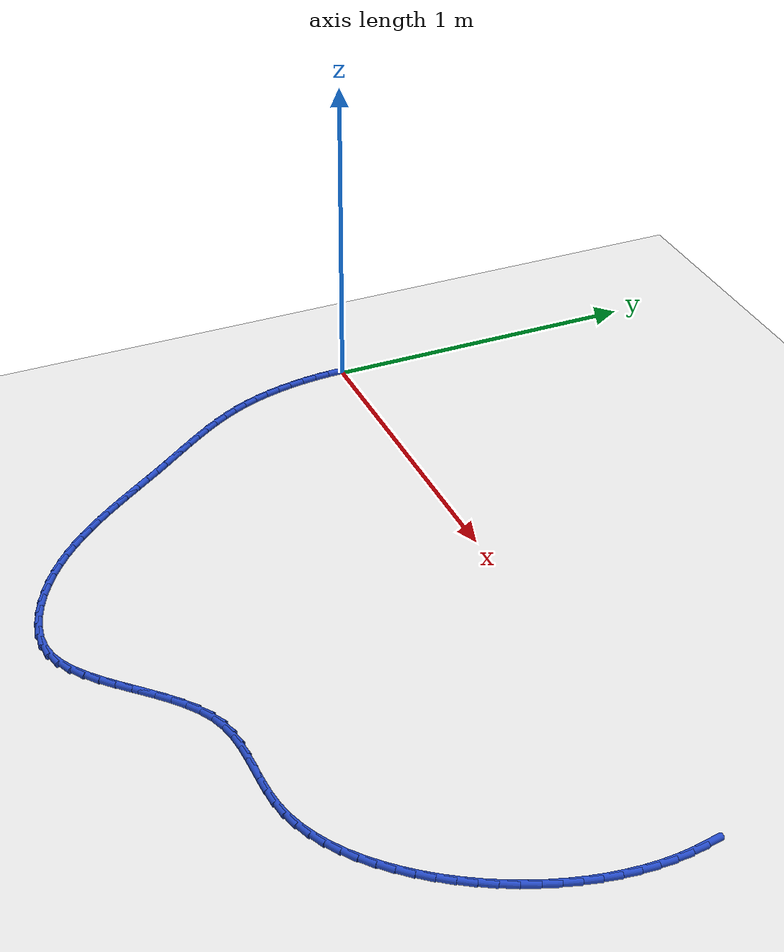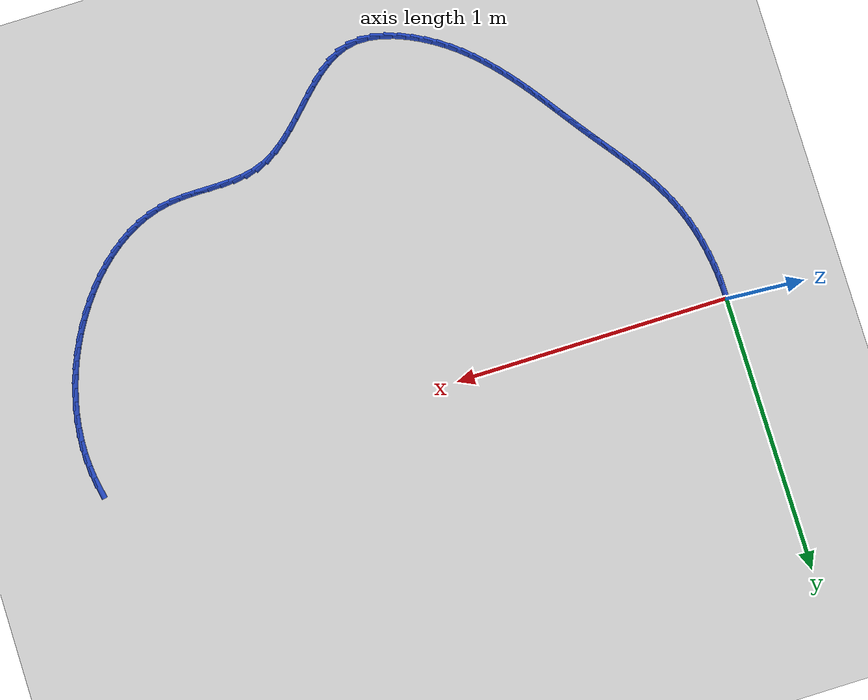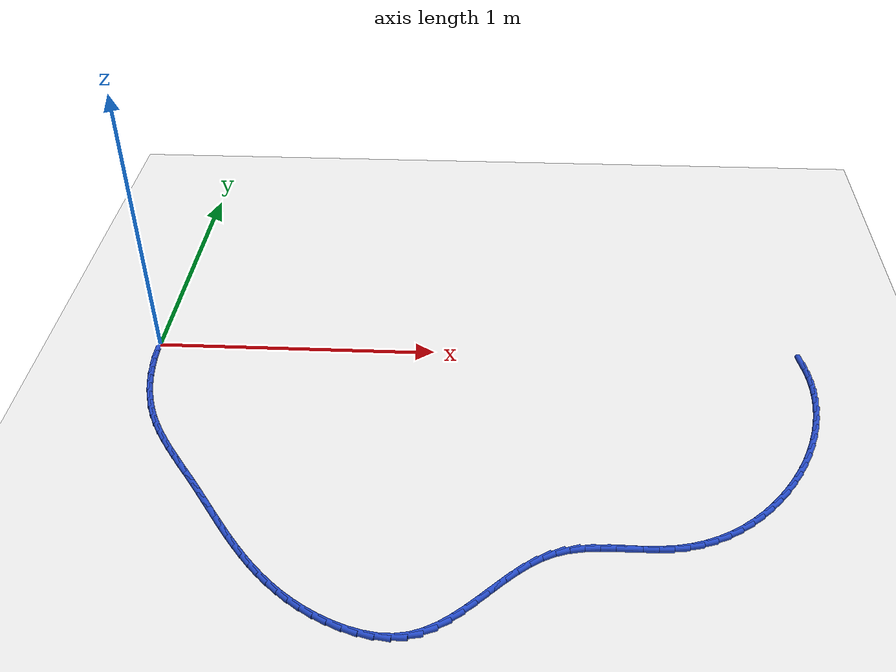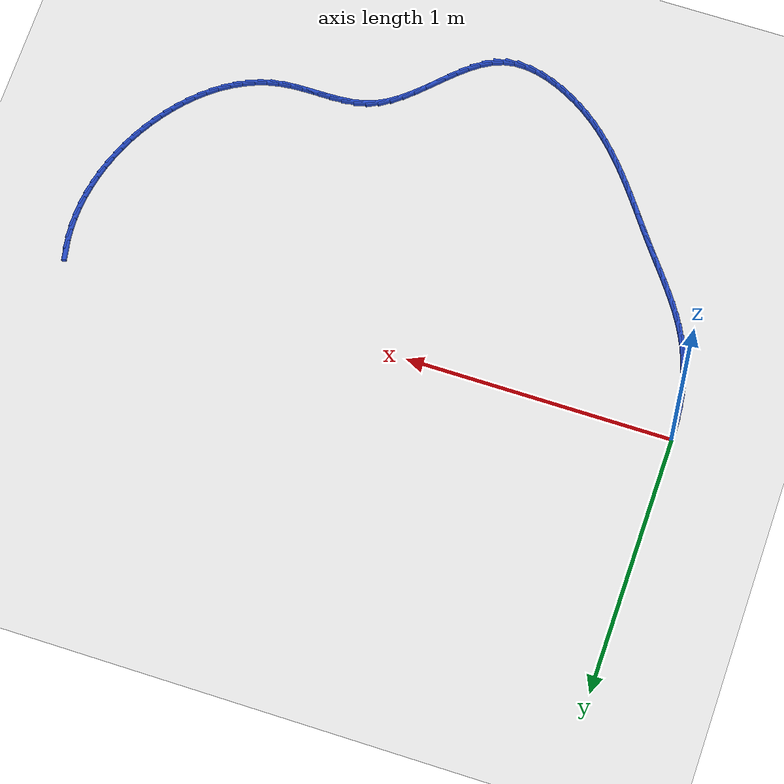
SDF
<sdf version="1.6">
 <world name="default">
  <model name="ground_plane">
   <static>1</static>
   <link name="link">
    <collision name="collision">
     <geometry><plane><normal>0 0 1</normal><size>100 100</size></plane></geometry>
     <surface><friction><ode><mu>100</mu><mu2>50</mu2></ode></friction></surface>
    </collision>
    <visual name="visual">
     <cast_shadows>0</cast_shadows>
     <geometry><plane><normal>0 0 1</normal><size>100 100</size></plane></geometry>
     <material>
      <script><uri>file://media/materials/scripts/gazebo.material</uri><name>Gazebo/WhiteGlow</name></script>
     </material>
    </visual>
   </link>
  </model>
  <model name="line">
   <link name="link_79">
    <pose>2.3153309946196994 -0.015575855914104424 0.01 0 1.57 -1.394334365909763</pose>
    <collision name="collision">
     <geometry><cylinder><radius>0.01</radius><length>0.08</length></cylinder></geometry>
    </collision>
    <visual name="visual">
     <material>
      <script><name>Gazebo/Blue</name><uri>file://media/materials/scripts/gazebo.material</uri></script>
     </material>
     <geometry><cylinder><radius>0.01</radius><length>0.08</length></cylinder></geometry>
    </visual>
   </link>
   <link name="link_80">
    <pose>2.323337787706472 -0.06047795626926299 0.01 0 1.57 -1.4661962134425361</pose>
    <collision name="collision">
     <geometry><cylinder><radius>0.01</radius><length>0.08</length></cylinder></geometry>
    </collision>
    <visual name="visual">
     <material>
      <script><name>Gazebo/Blue</name><uri>file://media/materials/scripts/gazebo.material</uri></script>
     </material>
     <geometry><cylinder><radius>0.01</radius><length>0.08</length></cylinder></geometry>
    </visual>
   </link>
   <link name="link_81">
    <pose>2.328136897364009 -0.10619104469259136 0.01 0 1.57 -1.5346631598240679</pose>
    <collision name="collision">
     <geometry><cylinder><radius>0.01</radius><length>0.08</length></cylinder></geometry>
    </collision>
    <visual name="visual">
     <material>
      <script><name>Gazebo/Blue</name><uri>file://media/materials/scripts/gazebo.material</uri></script>
     </material>
     <geometry><cylinder><radius>0.01</radius><length>0.08</length></cylinder></geometry>
    </visual>
   </link>
   <link name="link_82">
    <pose>2.329811877493473 -0.15252662089030877 0.01 0 1.57 1.5416062401000117</pose>
    <collision name="collision">
     <geometry><cylinder><radius>0.01</radius><length>0.08</length></cylinder></geometry>
    </collision>
    <visual name="visual">
     <material>
      <script><name>Gazebo/Blue</name><uri>file://media/materials/scripts/gazebo.material</uri></script>
     </material>
     <geometry><cylinder><radius>0.01</radius><length>0.08</length></cylinder></geometry>
    </visual>
   </link>
   <link name="link_83">
    <pose>2.328446281996025 -0.19929618456863232 0.01 0 1.57 1.479112948693568</pose>
    <collision name="collision">
     <geometry><cylinder><radius>0.01</radius><length>0.08</length></cylinder></geometry>
    </collision>
    <visual name="visual">
     <material>
      <script><name>Gazebo/Blue</name><uri>file://media/materials/scripts/gazebo.material</uri></script>
     </material>
     <geometry><cylinder><radius>0.01</radius><length>0.08</length></cylinder></geometry>
    </visual>
   </link>
   <link name="link_84">
    <pose>2.3241236647728276 -0.24631123543378103 0.01 0 1.57 1.4190969305252579</pose>
    <collision name="collision">
     <geometry><cylinder><radius>0.01</radius><length>0.08</length></cylinder></geometry>
    </collision>
    <visual name="visual">
     <material>
      <script><name>Gazebo/Blue</name><uri>file://media/materials/scripts/gazebo.material</uri></script>
     </material>
     <geometry><cylinder><radius>0.01</radius><length>0.08</length></cylinder></geometry>
    </visual>
   </link>
   <link name="link_85">
    <pose>2.316927579725044 -0.2933832731919736 0.01 0 1.57 1.3611839267809676</pose>
    <collision name="collision">
     <geometry><cylinder><radius>0.01</radius><length>0.08</length></cylinder></geometry>
    </collision>
    <visual name="visual">
     <material>
      <script><name>Gazebo/Blue</name><uri>file://media/materials/scripts/gazebo.material</uri></script>
     </material>
     <geometry><cylinder><radius>0.01</radius><length>0.08</length></cylinder></geometry>
    </visual>
   </link>
   <link name="link_86">
    <pose>2.3069415807538363 -0.3403237975494286 0.01 0 1.57 1.3049900606232636</pose>
    <collision name="collision">
     <geometry><cylinder><radius>0.01</radius><length>0.08</length></cylinder></geometry>
    </collision>
    <visual name="visual">
     <material>
      <script><name>Gazebo/Blue</name><uri>file://media/materials/scripts/gazebo.material</uri></script>
     </material>
     <geometry><cylinder><radius>0.01</radius><length>0.08</length></cylinder></geometry>
    </visual>
   </link>
   <link name="link_87">
    <pose>2.2942492217603645 -0.3869443082123653 0.01 0 1.57 1.2501294041197348</pose>
    <collision name="collision">
     <geometry><cylinder><radius>0.01</radius><length>0.08</length></cylinder></geometry>
    </collision>
    <visual name="visual">
     <material>
      <script><name>Gazebo/Blue</name><uri>file://media/materials/scripts/gazebo.material</uri></script>
     </material>
     <geometry><cylinder><radius>0.01</radius><length>0.08</length></cylinder></geometry>
    </visual>
   </link>
   <link name="link_88">
    <pose>2.2789340566457934 -0.4330563048870006 0.01 0 1.57 1.1962182457895125</pose>
    <collision name="collision">
     <geometry><cylinder><radius>0.01</radius><length>0.08</length></cylinder></geometry>
    </collision>
    <visual name="visual">
     <material>
      <script><name>Gazebo/Blue</name><uri>file://media/materials/scripts/gazebo.material</uri></script>
     </material>
     <geometry><cylinder><radius>0.01</radius><length>0.08</length></cylinder></geometry>
    </visual>
   </link>
   <link name="link_89">
    <pose>2.2610796393112844 -0.47847128727955374 0.01 0 1.57 1.142877042445908</pose>
    <collision name="collision">
     <geometry><cylinder><radius>0.01</radius><length>0.08</length></cylinder></geometry>
    </collision>
    <visual name="visual">
     <material>
      <script><name>Gazebo/Blue</name><uri>file://media/materials/scripts/gazebo.material</uri></script>
     </material>
     <geometry><cylinder><radius>0.01</radius><length>0.08</length></cylinder></geometry>
    </visual>
   </link>
   <link name="link_90">
    <pose>2.2407695236579985 -0.5230007550962433 0.01 0 1.57 1.0897308969278872</pose>
    <collision name="collision">
     <geometry><cylinder><radius>0.01</radius><length>0.08</length></cylinder></geometry>
    </collision>
    <visual name="visual">
     <material>
      <script><name>Gazebo/Blue</name><uri>file://media/materials/scripts/gazebo.material</uri></script>
     </material>
     <geometry><cylinder><radius>0.01</radius><length>0.08</length></cylinder></geometry>
    </visual>
   </link>
   <link name="link_91">
    <pose>2.2180872635871 -0.566456208043288 0.01 0 1.57 1.03640927419584</pose>
    <collision name="collision">
     <geometry><cylinder><radius>0.01</radius><length>0.08</length></cylinder></geometry>
    </collision>
    <visual name="visual">
     <material>
      <script><name>Gazebo/Blue</name><uri>file://media/materials/scripts/gazebo.material</uri></script>
     </material>
     <geometry><cylinder><radius>0.01</radius><length>0.08</length></cylinder></geometry>
    </visual>
   </link>
   <link name="link_92">
    <pose>2.193116412999748 -0.6086491458269065 0.01 0 1.57 0.9824971063889345</pose>
    <collision name="collision">
     <geometry><cylinder><radius>0.01</radius><length>0.08</length></cylinder></geometry>
    </collision>
    <visual name="visual">
     <material>
      <script><name>Gazebo/Blue</name><uri>file://media/materials/scripts/gazebo.material</uri></script>
     </material>
     <geometry><cylinder><radius>0.01</radius><length>0.08</length></cylinder></geometry>
    </visual>
   </link>
   <link name="link_93">
    <pose>2.1659404736150427 -0.6493868688183145 0.01 0 1.57 0.9267895767003484</pose>
    <collision name="collision">
     <geometry><cylinder><radius>0.01</radius><length>0.08</length></cylinder></geometry>
    </collision>
    <visual name="visual">
     <material>
      <script><name>Gazebo/Blue</name><uri>file://media/materials/scripts/gazebo.material</uri></script>
     </material>
     <geometry><cylinder><radius>0.01</radius><length>0.08</length></cylinder></geometry>
    </visual>
   </link>
   <link name="link_94">
    <pose>2.1366421212733226 -0.6884102150593363 0.01 0 1.57 0.8680067684217831</pose>
    <collision name="collision">
     <geometry><cylinder><radius>0.01</radius><length>0.08</length></cylinder></geometry>
    </collision>
    <visual name="visual">
     <material>
      <script><name>Gazebo/Blue</name><uri>file://media/materials/scripts/gazebo.material</uri></script>
     </material>
     <geometry><cylinder><radius>0.01</radius><length>0.08</length></cylinder></geometry>
    </visual>
   </link>
   <link name="link_95">
    <pose>2.1053033721766967 -0.7254069384161237 0.01 0 1.57 0.8053977715013263</pose>
    <collision name="collision">
     <geometry><cylinder><radius>0.01</radius><length>0.08</length></cylinder></geometry>
    </collision>
    <visual name="visual">
     <material>
      <script><name>Gazebo/Blue</name><uri>file://media/materials/scripts/gazebo.material</uri></script>
     </material>
     <geometry><cylinder><radius>0.01</radius><length>0.08</length></cylinder></geometry>
    </visual>
   </link>
   <link name="link_96">
    <pose>2.0720062241207042 -0.7600633114917603 0.01 0 1.57 0.7382249399401939</pose>
    <collision name="collision">
     <geometry><cylinder><radius>0.01</radius><length>0.08</length></cylinder></geometry>
    </collision>
    <visual name="visual">
     <material>
      <script><name>Gazebo/Blue</name><uri>file://media/materials/scripts/gazebo.material</uri></script>
     </material>
     <geometry><cylinder><radius>0.01</radius><length>0.08</length></cylinder></geometry>
    </visual>
   </link>
   <link name="link_97">
    <pose>2.036832674900885 -0.7920656068893287 0.01 0 1.57 0.6657725497142223</pose>
    <collision name="collision">
     <geometry><cylinder><radius>0.01</radius><length>0.08</length></cylinder></geometry>
    </collision>
    <visual name="visual">
     <material>
      <script><name>Gazebo/Blue</name><uri>file://media/materials/scripts/gazebo.material</uri></script>
     </material>
     <geometry><cylinder><radius>0.01</radius><length>0.08</length></cylinder></geometry>
    </visual>
   </link>
   <link name="link_98">
    <pose>1.9998647223127755 -0.8211000972119121 0.01 0 1.57 0.5873947576112122</pose>
    <collision name="collision">
     <geometry><cylinder><radius>0.01</radius><length>0.08</length></cylinder></geometry>
    </collision>
    <visual name="visual">
     <material>
      <script><name>Gazebo/Blue</name><uri>file://media/materials/scripts/gazebo.material</uri></script>
     </material>
     <geometry><cylinder><radius>0.01</radius><length>0.08</length></cylinder></geometry>
    </visual>
   </link>
   <link name="link_99">
    <pose>1.961184364151915 -0.8468530550625941 0.01 0 1.57 0.5025913268602459</pose>
    <collision name="collision">
     <geometry><cylinder><radius>0.01</radius><length>0.08</length></cylinder></geometry>
    </collision>
    <visual name="visual">
     <material>
      <script><name>Gazebo/Blue</name><uri>file://media/materials/scripts/gazebo.material</uri></script>
     </material>
     <geometry><cylinder><radius>0.01</radius><length>0.08</length></cylinder></geometry>
    </visual>
   </link>
   <link name="link_100">
    <pose>1.9208735982138425 -0.8690107530444581 0.01 0 1.57 0.4111127923886655</pose>
    <collision name="collision">
     <geometry><cylinder><radius>0.01</radius><length>0.08</length></cylinder></geometry>
    </collision>
    <visual name="visual">
     <material>
      <script><name>Gazebo/Blue</name><uri>file://media/materials/scripts/gazebo.material</uri></script>
     </material>
     <geometry><cylinder><radius>0.01</radius><length>0.08</length></cylinder></geometry>
    </visual>
   </link>
   <link name="link_101">
    <pose>1.8790144222940943 -0.8872594637605872 0.01 0 1.57 0.3130870487203906</pose>
    <collision name="collision">
     <geometry><cylinder><radius>0.01</radius><length>0.08</length></cylinder></geometry>
    </collision>
    <visual name="visual">
     <material>
      <script><name>Gazebo/Blue</name><uri>file://media/materials/scripts/gazebo.material</uri></script>
     </material>
     <geometry><cylinder><radius>0.01</radius><length>0.08</length></cylinder></geometry>
    </visual>
   </link>
   <link name="link_102">
    <pose>1.8356888341882114 -0.9012854598140642 0.01 0 1.57 0.20915160846940364</pose>
    <collision name="collision">
     <geometry><cylinder><radius>0.01</radius><length>0.08</length></cylinder></geometry>
    </collision>
    <visual name="visual">
     <material>
      <script><name>Gazebo/Blue</name><uri>file://media/materials/scripts/gazebo.material</uri></script>
     </material>
     <geometry><cylinder><radius>0.01</radius><length>0.08</length></cylinder></geometry>
    </visual>
   </link>
   <link name="link_103">
    <pose>1.7909789120356556 -0.9107753943328168 0.01 0 1.57 0.10955299941121056</pose>
    <collision name="collision">
     <geometry><cylinder><radius>0.01</radius><length>0.08</length></cylinder></geometry>
    </collision>
    <visual name="visual">
     <material>
      <script><name>Gazebo/Blue</name><uri>file://media/materials/scripts/gazebo.material</uri></script>
     </material>
     <geometry><cylinder><radius>0.01</radius><length>0.08</length></cylinder></geometry>
    </visual>
   </link>
   <link name="link_104">
    <pose>1.74505350508198 -0.9158268856989105 0.01 0 1.57 0.040733349715306885</pose>
    <collision name="collision">
     <geometry><cylinder><radius>0.01</radius><length>0.08</length></cylinder></geometry>
    </collision>
    <visual name="visual">
     <material>
      <script><name>Gazebo/Blue</name><uri>file://media/materials/scripts/gazebo.material</uri></script>
     </material>
     <geometry><cylinder><radius>0.01</radius><length>0.08</length></cylinder></geometry>
    </visual>
   </link>
   <link name="link_105">
    <pose>1.6983334475482144 -0.9177310033653379 0.01 0 1.57 0.005594958672195666</pose>
    <collision name="collision">
     <geometry><cylinder><radius>0.01</radius><length>0.08</length></cylinder></geometry>
    </collision>
    <visual name="visual">
     <material>
      <script><name>Gazebo/Blue</name><uri>file://media/materials/scripts/gazebo.material</uri></script>
     </material>
     <geometry><cylinder><radius>0.01</radius><length>0.08</length></cylinder></geometry>
    </visual>
   </link>
   <link name="link_106">
    <pose>1.6512850580421445 -0.9179942399069706 0.01 0 1.57 0.00274667578630848</pose>
    <collision name="collision">
     <geometry><cylinder><radius>0.01</radius><length>0.08</length></cylinder></geometry>
    </collision>
    <visual name="visual">
     <material>
      <script><name>Gazebo/Blue</name><uri>file://media/materials/scripts/gazebo.material</uri></script>
     </material>
     <geometry><cylinder><radius>0.01</radius><length>0.08</length></cylinder></geometry>
    </visual>
   </link>
   <link name="link_107">
    <pose>1.6043746551715592 -0.9181230878986809 0.01 0 1.57 0.0324023566491863</pose>
    <collision name="collision">
     <geometry><cylinder><radius>0.01</radius><length>0.08</length></cylinder></geometry>
    </collision>
    <visual name="visual">
     <material>
      <script><name>Gazebo/Blue</name><uri>file://media/materials/scripts/gazebo.material</uri></script>
     </material>
     <geometry><cylinder><radius>0.01</radius><length>0.08</length></cylinder></geometry>
    </visual>
   </link>
   <link name="link_108">
    <pose>1.5580685575442432 -0.9196240399153405 0.01 0 1.57 0.09651587223530028</pose>
    <collision name="collision">
     <geometry><cylinder><radius>0.01</radius><length>0.08</length></cylinder></geometry>
    </collision>
    <visual name="visual">
     <material>
      <script><name>Gazebo/Blue</name><uri>file://media/materials/scripts/gazebo.material</uri></script>
     </material>
     <geometry><cylinder><radius>0.01</radius><length>0.08</length></cylinder></geometry>
    </visual>
   </link>
   <link name="link_109">
    <pose>1.512833083767984 -0.924003588531822 0.01 0 1.57 0.19794409065192045</pose>
    <collision name="collision">
     <geometry><cylinder><radius>0.01</radius><length>0.08</length></cylinder></geometry>
    </collision>
    <visual name="visual">
     <material>
      <script><name>Gazebo/Blue</name><uri>file://media/materials/scripts/gazebo.material</uri></script>
     </material>
     <geometry><cylinder><radius>0.01</radius><length>0.08</length></cylinder></geometry>
    </visual>
   </link>
   <link name="link_110">
    <pose>1.4691345524505675 -0.9327682263229967 0.01 0 1.57 0.33789011468176916</pose>
    <collision name="collision">
     <geometry><cylinder><radius>0.01</radius><length>0.08</length></cylinder></geometry>
    </collision>
    <visual name="visual">
     <material>
      <script><name>Gazebo/Blue</name><uri>file://media/materials/scripts/gazebo.material</uri></script>
     </material>
     <geometry><cylinder><radius>0.01</radius><length>0.08</length></cylinder></geometry>
    </visual>
   </link>
   <link name="link_111">
    <pose>1.4274376071111385 -0.9474190631038539 0.01 0 1.57 0.4924434628749308</pose>
    <collision name="collision">
     <geometry><cylinder><radius>0.01</radius><length>0.08</length></cylinder></geometry>
    </collision>
    <visual name="visual">
     <material>
      <script><name>Gazebo/Blue</name><uri>file://media/materials/scripts/gazebo.material</uri></script>
     </material>
     <geometry><cylinder><radius>0.01</radius><length>0.08</length></cylinder></geometry>
    </visual>
   </link>
   <link name="link_112">
    <pose>1.387942979684898 -0.9686091504721337 0.01 0 1.57 0.6154987719939531</pose>
    <collision name="collision">
     <geometry><cylinder><radius>0.01</radius><length>0.08</length></cylinder></geometry>
    </collision>
    <visual name="visual">
     <material>
      <script><name>Gazebo/Blue</name><uri>file://media/materials/scripts/gazebo.material</uri></script>
     </material>
     <geometry><cylinder><radius>0.01</radius><length>0.08</length></cylinder></geometry>
    </visual>
   </link>
   <link name="link_113">
    <pose>1.3503020860528079 -0.9952263579646173 0.01 0 1.57 0.703502328011055</pose>
    <collision name="collision">
     <geometry><cylinder><radius>0.01</radius><length>0.08</length></cylinder></geometry>
    </collision>
    <visual name="visual">
     <material>
      <script><name>Gazebo/Blue</name><uri>file://media/materials/scripts/gazebo.material</uri></script>
     </material>
     <geometry><cylinder><radius>0.01</radius><length>0.08</length></cylinder></geometry>
    </visual>
   </link>
   <link name="link_114">
    <pose>1.3140977768383182 -1.025938226289839 0.01 0 1.57 0.7604858901946682</pose>
    <collision name="collision">
     <geometry><cylinder><radius>0.01</radius><length>0.08</length></cylinder></geometry>
    </collision>
    <visual name="visual">
     <material>
      <script><name>Gazebo/Blue</name><uri>file://media/materials/scripts/gazebo.material</uri></script>
     </material>
     <geometry><cylinder><radius>0.01</radius><length>0.08</length></cylinder></geometry>
    </visual>
   </link>
   <link name="link_115">
    <pose>1.2789129026648791 -1.0594122961563337 0.01 0 1.57 0.7900209574443715</pose>
    <collision name="collision">
     <geometry><cylinder><radius>0.01</radius><length>0.08</length></cylinder></geometry>
    </collision>
    <visual name="visual">
     <material>
      <script><name>Gazebo/Blue</name><uri>file://media/materials/scripts/gazebo.material</uri></script>
     </material>
     <geometry><cylinder><radius>0.01</radius><length>0.08</length></cylinder></geometry>
    </visual>
   </link>
   <link name="link_116">
    <pose>1.2443303141559399 -1.0943161082726356 0.01 0 1.57 0.7940961499438406</pose>
    <collision name="collision">
     <geometry><cylinder><radius>0.01</radius><length>0.08</length></cylinder></geometry>
    </collision>
    <visual name="visual">
     <material>
      <script><name>Gazebo/Blue</name><uri>file://media/materials/scripts/gazebo.material</uri></script>
     </material>
     <geometry><cylinder><radius>0.01</radius><length>0.08</length></cylinder></geometry>
    </visual>
   </link>
   <link name="link_117">
    <pose>1.2099328619349516 -1.1293172033472778 0.01 0 1.57 0.7727730323567963</pose>
    <collision name="collision">
     <geometry><cylinder><radius>0.01</radius><length>0.08</length></cylinder></geometry>
    </collision>
    <visual name="visual">
     <material>
      <script><name>Gazebo/Blue</name><uri>file://media/materials/scripts/gazebo.material</uri></script>
     </material>
     <geometry><cylinder><radius>0.01</radius><length>0.08</length></cylinder></geometry>
    </visual>
   </link>
   <link name="link_118">
    <pose>1.1753033966253643 -1.1630831220887952 0.01 0 1.57 0.724095194638197</pose>
    <collision name="collision">
     <geometry><cylinder><radius>0.01</radius><length>0.08</length></cylinder></geometry>
    </collision>
    <visual name="visual">
     <material>
      <script><name>Gazebo/Blue</name><uri>file://media/materials/scripts/gazebo.material</uri></script>
     </material>
     <geometry><cylinder><radius>0.01</radius><length>0.08</length></cylinder></geometry>
    </visual>
   </link>
   <link name="link_119">
    <pose>1.1400247688506269 -1.1942814052057216 0.01 0 1.57 0.6441960132005059</pose>
    <collision name="collision">
     <geometry><cylinder><radius>0.01</radius><length>0.08</length></cylinder></geometry>
    </collision>
    <visual name="visual">
     <material>
      <script><name>Gazebo/Blue</name><uri>file://media/materials/scripts/gazebo.material</uri></script>
     </material>
     <geometry><cylinder><radius>0.01</radius><length>0.08</length></cylinder></geometry>
    </visual>
   </link>
   <link name="link_120">
    <pose>1.1036798292341905 -1.2215795934065914 0.01 0 1.57 0.5280560429068475</pose>
    <collision name="collision">
     <geometry><cylinder><radius>0.01</radius><length>0.08</length></cylinder></geometry>
    </collision>
    <visual name="visual">
     <material>
      <script><name>Gazebo/Blue</name><uri>file://media/materials/scripts/gazebo.material</uri></script>
     </material>
     <geometry><cylinder><radius>0.01</radius><length>0.08</length></cylinder></geometry>
    </visual>
   </link>
   <link name="link_121">
    <pose>1.0658514283995033 -1.2436452273999392 0.01 0 1.57 0.3719938376863075</pose>
    <collision name="collision">
     <geometry><cylinder><radius>0.01</radius><length>0.08</length></cylinder></geometry>
    </collision>
    <visual name="visual">
     <material>
      <script><name>Gazebo/Blue</name><uri>file://media/materials/scripts/gazebo.material</uri></script>
     </material>
     <geometry><cylinder><radius>0.01</radius><length>0.08</length></cylinder></geometry>
    </visual>
   </link>
   <link name="link_122">
    <pose>1.0261224169700178 -1.259145847894299 0.01 0 1.57 0.17968748972214715</pose>
    <collision name="collision">
     <geometry><cylinder><radius>0.01</radius><length>0.08</length></cylinder></geometry>
    </collision>
    <visual name="visual">
     <material>
      <script><name>Gazebo/Blue</name><uri>file://media/materials/scripts/gazebo.material</uri></script>
     </material>
     <geometry><cylinder><radius>0.01</radius><length>0.08</length></cylinder></geometry>
    </visual>
   </link>
   <link name="link_123">
    <pose>0.9840926769484483 -1.266780411008174 0.01 0 1.57 -0.010245193181587554</pose>
    <collision name="collision">
     <geometry><cylinder><radius>0.01</radius><length>0.08</length></cylinder></geometry>
    </collision>
    <visual name="visual">
     <material>
      <script><name>Gazebo/Blue</name><uri>file://media/materials/scripts/gazebo.material</uri></script>
     </material>
     <geometry><cylinder><radius>0.01</radius><length>0.08</length></cylinder></geometry>
    </visual>
   </link>
   <link name="link_124">
    <pose>0.9399477305492332 -1.266328121679516 0.01 0 1.57 -0.16244372925285985</pose>
    <collision name="collision">
     <geometry><cylinder><radius>0.01</radius><length>0.08</length></cylinder></geometry>
    </collision>
    <visual name="visual">
     <material>
      <script><name>Gazebo/Blue</name><uri>file://media/materials/scripts/gazebo.material</uri></script>
     </material>
     <geometry><cylinder><radius>0.01</radius><length>0.08</length></cylinder></geometry>
    </visual>
   </link>
   <link name="link_125">
    <pose>0.8945923749212104 -1.2588949310006443 0.01 0 1.57 -0.2822146402139752</pose>
    <collision name="collision">
     <geometry><cylinder><radius>0.01</radius><length>0.08</length></cylinder></geometry>
    </collision>
    <visual name="visual">
     <material>
      <script><name>Gazebo/Blue</name><uri>file://media/materials/scripts/gazebo.material</uri></script>
     </material>
     <geometry><cylinder><radius>0.01</radius><length>0.08</length></cylinder></geometry>
    </visual>
   </link>
   <link name="link_126">
    <pose>0.8489755199837148 -1.2456681587392164 0.01 0 1.57 -0.37784144735803976</pose>
    <collision name="collision">
     <geometry><cylinder><radius>0.01</radius><length>0.08</length></cylinder></geometry>
    </collision>
    <visual name="visual">
     <material>
      <script><name>Gazebo/Blue</name><uri>file://media/materials/scripts/gazebo.material</uri></script>
     </material>
     <geometry><cylinder><radius>0.01</radius><length>0.08</length></cylinder></geometry>
    </visual>
   </link>
   <link name="link_127">
    <pose>0.804046075656084 -1.2278351246628918 0.01 0 1.57 -0.45633325926498103</pose>
    <collision name="collision">
     <geometry><cylinder><radius>0.01</radius><length>0.08</length></cylinder></geometry>
    </collision>
    <visual name="visual">
     <material>
      <script><name>Gazebo/Blue</name><uri>file://media/materials/scripts/gazebo.material</uri></script>
     </material>
     <geometry><cylinder><radius>0.01</radius><length>0.08</length></cylinder></geometry>
    </visual>
   </link>
   <link name="link_128">
    <pose>0.7607524464846939 -1.206582705668294 0.01 0 1.57 -0.5247841771985446</pose>
    <collision name="collision">
     <geometry><cylinder><radius>0.01</radius><length>0.08</length></cylinder></geometry>
    </collision>
    <visual name="visual">
     <material>
      <script><name>Gazebo/Blue</name><uri>file://media/materials/scripts/gazebo.material</uri></script>
     </material>
     <geometry><cylinder><radius>0.01</radius><length>0.08</length></cylinder></geometry>
    </visual>
   </link>
   <link name="link_129">
    <pose>0.7197637830064931 -1.182853061340637 0.01 0 1.57 -0.5893820339817992</pose>
    <collision name="collision">
     <geometry><cylinder><radius>0.01</radius><length>0.08</length></cylinder></geometry>
    </collision>
    <visual name="visual">
     <material>
      <script><name>Gazebo/Blue</name><uri>file://media/materials/scripts/gazebo.material</uri></script>
     </material>
     <geometry><cylinder><radius>0.01</radius><length>0.08</length></cylinder></geometry>
    </visual>
   </link>
   <link name="link_130">
    <pose>0.6810070008034068 -1.1569379121076098 0.01 0 1.57 -0.6500197623348749</pose>
    <collision name="collision">
     <geometry><cylinder><radius>0.01</radius><length>0.08</length></cylinder></geometry>
    </collision>
    <visual name="visual">
     <material>
      <script><name>Gazebo/Blue</name><uri>file://media/materials/scripts/gazebo.material</uri></script>
     </material>
     <geometry><cylinder><radius>0.01</radius><length>0.08</length></cylinder></geometry>
    </visual>
   </link>
   <link name="link_131">
    <pose>0.6442870664424455 -1.129022111408239 0.01 0 1.57 -0.7059104689070501</pose>
    <collision name="collision">
     <geometry><cylinder><radius>0.01</radius><length>0.08</length></cylinder></geometry>
    </collision>
    <visual name="visual">
     <material>
      <script><name>Gazebo/Blue</name><uri>file://media/materials/scripts/gazebo.material</uri></script>
     </material>
     <geometry><cylinder><radius>0.01</radius><length>0.08</length></cylinder></geometry>
    </visual>
   </link>
   <link name="link_132">
    <pose>0.6094089464906216 -1.0992905126815544 0.01 0 1.57 -0.75647476626325</pose>
    <collision name="collision">
     <geometry><cylinder><radius>0.01</radius><length>0.08</length></cylinder></geometry>
    </collision>
    <visual name="visual">
     <material>
      <script><name>Gazebo/Blue</name><uri>file://media/materials/scripts/gazebo.material</uri></script>
     </material>
     <geometry><cylinder><radius>0.01</radius><length>0.08</length></cylinder></geometry>
    </visual>
   </link>
   <link name="link_133">
    <pose>0.5761776075149465 -1.067927969366584 0.01 0 1.57 -0.801329178065593</pose>
    <collision name="collision">
     <geometry><cylinder><radius>0.01</radius><length>0.08</length></cylinder></geometry>
    </collision>
    <visual name="visual">
     <material>
      <script><name>Gazebo/Blue</name><uri>file://media/materials/scripts/gazebo.material</uri></script>
     </material>
     <geometry><cylinder><radius>0.01</radius><length>0.08</length></cylinder></geometry>
    </visual>
   </link>
   <link name="link_134">
    <pose>0.5443980160824311 -1.0351193349023553 0.01 0 1.57 -0.840256271199162</pose>
    <collision name="collision">
     <geometry><cylinder><radius>0.01</radius><length>0.08</length></cylinder></geometry>
    </collision>
    <visual name="visual">
     <material>
      <script><name>Gazebo/Blue</name><uri>file://media/materials/scripts/gazebo.material</uri></script>
     </material>
     <geometry><cylinder><radius>0.01</radius><length>0.08</length></cylinder></geometry>
    </visual>
   </link>
   <link name="link_135">
    <pose>0.5138751387600871 -1.0010494627278974 0.01 0 1.57 -0.8731659724002518</pose>
    <collision name="collision">
     <geometry><cylinder><radius>0.01</radius><length>0.08</length></cylinder></geometry>
    </collision>
    <visual name="visual">
     <material>
      <script><name>Gazebo/Blue</name><uri>file://media/materials/scripts/gazebo.material</uri></script>
     </material>
     <geometry><cylinder><radius>0.01</radius><length>0.08</length></cylinder></geometry>
    </visual>
   </link>
   <link name="link_136">
    <pose>0.4844139421149253 -0.9659032062822378 0.01 0 1.57 -0.9000558166777489</pose>
    <collision name="collision">
     <geometry><cylinder><radius>0.01</radius><length>0.08</length></cylinder></geometry>
    </collision>
    <visual name="visual">
     <material>
      <script><name>Gazebo/Blue</name><uri>file://media/materials/scripts/gazebo.material</uri></script>
     </material>
     <geometry><cylinder><radius>0.01</radius><length>0.08</length></cylinder></geometry>
    </visual>
   </link>
   <link name="link_137">
    <pose>0.45581939271395805 -0.9298654190044054 0.01 0 1.57 -0.9209751746489222</pose>
    <collision name="collision">
     <geometry><cylinder><radius>0.01</radius><length>0.08</length></cylinder></geometry>
    </collision>
    <visual name="visual">
     <material>
      <script><name>Gazebo/Blue</name><uri>file://media/materials/scripts/gazebo.material</uri></script>
     </material>
     <geometry><cylinder><radius>0.01</radius><length>0.08</length></cylinder></geometry>
    </visual>
   </link>
   <link name="link_138">
    <pose>0.42789645712419655 -0.8931209543334285 0.01 0 1.57 -0.9359959850813742</pose>
    <collision name="collision">
     <geometry><cylinder><radius>0.01</radius><length>0.08</length></cylinder></geometry>
    </collision>
    <visual name="visual">
     <material>
      <script><name>Gazebo/Blue</name><uri>file://media/materials/scripts/gazebo.material</uri></script>
     </material>
     <geometry><cylinder><radius>0.01</radius><length>0.08</length></cylinder></geometry>
    </visual>
   </link>
   <link name="link_139">
    <pose>0.40045010191265196 -0.8558546657083352 0.01 0 1.57 -0.945190723614473</pose>
    <collision name="collision">
     <geometry><cylinder><radius>0.01</radius><length>0.08</length></cylinder></geometry>
    </collision>
    <visual name="visual">
     <material>
      <script><name>Gazebo/Blue</name><uri>file://media/materials/scripts/gazebo.material</uri></script>
     </material>
     <geometry><cylinder><radius>0.01</radius><length>0.08</length></cylinder></geometry>
    </visual>
   </link>
   <link name="link_140">
    <pose>0.3732852936463357 -0.8182514065681535 0.01 0 1.57 -0.9486173398042885</pose>
    <collision name="collision">
     <geometry><cylinder><radius>0.01</radius><length>0.08</length></cylinder></geometry>
    </collision>
    <visual name="visual">
     <material>
      <script><name>Gazebo/Blue</name><uri>file://media/materials/scripts/gazebo.material</uri></script>
     </material>
     <geometry><cylinder><radius>0.01</radius><length>0.08</length></cylinder></geometry>
    </visual>
   </link>
   <link name="link_141">
    <pose>0.3462069988922588 -0.7804960303519112 0.01 0 1.57 -0.9463105286339023</pose>
    <collision name="collision">
     <geometry><cylinder><radius>0.01</radius><length>0.08</length></cylinder></geometry>
    </collision>
    <visual name="visual">
     <material>
      <script><name>Gazebo/Blue</name><uri>file://media/materials/scripts/gazebo.material</uri></script>
     </material>
     <geometry><cylinder><radius>0.01</radius><length>0.08</length></cylinder></geometry>
    </visual>
   </link>
   <link name="link_142">
    <pose>0.3190201842174336 -0.742773390498638 0.01 0 1.57 -0.9382790357689641</pose>
    <collision name="collision">
     <geometry><cylinder><radius>0.01</radius><length>0.08</length></cylinder></geometry>
    </collision>
    <visual name="visual">
     <material>
      <script><name>Gazebo/Blue</name><uri>file://media/materials/scripts/gazebo.material</uri></script>
     </material>
     <geometry><cylinder><radius>0.01</radius><length>0.08</length></cylinder></geometry>
    </visual>
   </link>
   <link name="link_143">
    <pose>0.29152982718920817 -0.7052683328648294 0.01 0 1.57 -0.9272873078355498</pose>
    <collision name="collision">
     <geometry><cylinder><radius>0.01</radius><length>0.08</length></cylinder></geometry>
    </collision>
    <visual name="visual">
     <material>
      <script><name>Gazebo/Blue</name><uri>file://media/materials/scripts/gazebo.material</uri></script>
     </material>
     <geometry><cylinder><radius>0.01</radius><length>0.08</length></cylinder></geometry>
    </visual>
   </link>
   <link name="link_144">
    <pose>0.26364736076539125 -0.6680923236125554 0.01 0 1.57 -0.9229141755954755</pose>
    <collision name="collision">
     <geometry><cylinder><radius>0.01</radius><length>0.08</length></cylinder></geometry>
    </collision>
    <visual name="visual">
     <material>
      <script><name>Gazebo/Blue</name><uri>file://media/materials/scripts/gazebo.material</uri></script>
     </material>
     <geometry><cylinder><radius>0.01</radius><length>0.08</length></cylinder></geometry>
    </visual>
   </link>
   <link name="link_145">
    <pose>0.23565171446122687 -0.6311035135483106 0.01 0 1.57 -0.9272590434008481</pose>
    <collision name="collision">
     <geometry><cylinder><radius>0.01</radius><length>0.08</length></cylinder></geometry>
    </collision>
    <visual name="visual">
     <material>
      <script><name>Gazebo/Blue</name><uri>file://media/materials/scripts/gazebo.material</uri></script>
     </material>
     <geometry><cylinder><radius>0.01</radius><length>0.08</length></cylinder></geometry>
    </visual>
   </link>
   <link name="link_146">
    <pose>0.20790106123893665 -0.5941054309752143 0.01 0 1.57 -0.9404168521874837</pose>
    <collision name="collision">
     <geometry><cylinder><radius>0.01</radius><length>0.08</length></cylinder></geometry>
    </collision>
    <visual name="visual">
     <material>
      <script><name>Gazebo/Blue</name><uri>file://media/materials/scripts/gazebo.material</uri></script>
     </material>
     <geometry><cylinder><radius>0.01</radius><length>0.08</length></cylinder></geometry>
    </visual>
   </link>
   <link name="link_147">
    <pose>0.1807535740607435 -0.5569016041963883 0.01 0 1.57 -0.9625389080568817</pose>
    <collision name="collision">
     <geometry><cylinder><radius>0.01</radius><length>0.08</length></cylinder></geometry>
    </collision>
    <visual name="visual">
     <material>
      <script><name>Gazebo/Blue</name><uri>file://media/materials/scripts/gazebo.material</uri></script>
     </material>
     <geometry><cylinder><radius>0.01</radius><length>0.08</length></cylinder></geometry>
    </visual>
   </link>
   <link name="link_148">
    <pose>0.15456742588886918 -0.5192955615149525 0.01 0 1.57 -0.9938038039409289</pose>
    <collision name="collision">
     <geometry><cylinder><radius>0.01</radius><length>0.08</length></cylinder></geometry>
    </collision>
    <visual name="visual">
     <material>
      <script><name>Gazebo/Blue</name><uri>file://media/materials/scripts/gazebo.material</uri></script>
     </material>
     <geometry><cylinder><radius>0.01</radius><length>0.08</length></cylinder></geometry>
    </visual>
   </link>
   <link name="link_149">
    <pose>0.1297007896855357 -0.48109083123402707 0.01 0 1.57 -1.034364132434718</pose>
    <collision name="collision">
     <geometry><cylinder><radius>0.01</radius><length>0.08</length></cylinder></geometry>
    </collision>
    <visual name="visual">
     <material>
      <script><name>Gazebo/Blue</name><uri>file://media/materials/scripts/gazebo.material</uri></script>
     </material>
     <geometry><cylinder><radius>0.01</radius><length>0.08</length></cylinder></geometry>
    </visual>
   </link>
   <link name="link_150">
    <pose>0.10651183841296523 -0.4420909416567325 0.01 0 1.57 -1.0842660736510992</pose>
    <collision name="collision">
     <geometry><cylinder><radius>0.01</radius><length>0.08</length></cylinder></geometry>
    </collision>
    <visual name="visual">
     <material>
      <script><name>Gazebo/Blue</name><uri>file://media/materials/scripts/gazebo.material</uri></script>
     </material>
     <geometry><cylinder><radius>0.01</radius><length>0.08</length></cylinder></geometry>
    </visual>
   </link>
   <link name="link_151">
    <pose>0.08535874503337954 -0.40209942108618846 0.01 0 1.57 -1.143054304727803</pose>
    <collision name="collision">
     <geometry><cylinder><radius>0.01</radius><length>0.08</length></cylinder></geometry>
    </collision>
    <visual name="visual">
     <material>
      <script><name>Gazebo/Blue</name><uri>file://media/materials/scripts/gazebo.material</uri></script>
     </material>
     <geometry><cylinder><radius>0.01</radius><length>0.08</length></cylinder></geometry>
    </visual>
   </link>
   <link name="link_152">
    <pose>0.0665890325712859 -0.3609279241225143 0.01 0 1.57 -1.2044378417835333</pose>
    <collision name="collision">
     <geometry><cylinder><radius>0.01</radius><length>0.08</length></cylinder></geometry>
    </collision>
    <visual name="visual">
     <material>
      <script><name>Gazebo/Blue</name><uri>file://media/materials/scripts/gazebo.material</uri></script>
     </material>
     <geometry><cylinder><radius>0.01</radius><length>0.08</length></cylinder></geometry>
    </visual>
   </link>
   <link name="link_153">
    <pose>0.05033142347921377 -0.31855505830758674 0.01 0 1.57 -1.2627340432484286</pose>
    <collision name="collision">
     <geometry><cylinder><radius>0.01</radius><length>0.08</length></cylinder></geometry>
    </collision>
    <visual name="visual">
     <material>
      <script><name>Gazebo/Blue</name><uri>file://media/materials/scripts/gazebo.material</uri></script>
     </material>
     <geometry><cylinder><radius>0.01</radius><length>0.08</length></cylinder></geometry>
    </visual>
   </link>
   <link name="link_154">
    <pose>0.036509450007719164 -0.27511599890854144 0.01 0 1.57 -1.3177782776932168</pose>
    <collision name="collision">
     <geometry><cylinder><radius>0.01</radius><length>0.08</length></cylinder></geometry>
    </collision>
    <visual name="visual">
     <material>
      <script><name>Gazebo/Blue</name><uri>file://media/materials/scripts/gazebo.material</uri></script>
     </material>
     <geometry><cylinder><radius>0.01</radius><length>0.08</length></cylinder></geometry>
    </visual>
   </link>
   <link name="link_155">
    <pose>0.02503872006375065 -0.23075196776023893 0.01 0 1.57 -1.3696908956653842</pose>
    <collision name="collision">
     <geometry><cylinder><radius>0.01</radius><length>0.08</length></cylinder></geometry>
    </collision>
    <visual name="visual">
     <material>
      <script><name>Gazebo/Blue</name><uri>file://media/materials/scripts/gazebo.material</uri></script>
     </material>
     <geometry><cylinder><radius>0.01</radius><length>0.08</length></cylinder></geometry>
    </visual>
   </link>
   <link name="link_156">
    <pose>0.01583484155425669 -0.1856041866975395 0.01 0 1.57 -1.4186429129163842</pose>
    <collision name="collision">
     <geometry><cylinder><radius>0.01</radius><length>0.08</length></cylinder></geometry>
    </collision>
    <visual name="visual">
     <material>
      <script><name>Gazebo/Blue</name><uri>file://media/materials/scripts/gazebo.material</uri></script>
     </material>
     <geometry><cylinder><radius>0.01</radius><length>0.08</length></cylinder></geometry>
    </visual>
   </link>
   <link name="link_157">
    <pose>0.008813422386186171 -0.1398138775553055 0.01 0 1.57 -1.4648394814556747</pose>
    <collision name="collision">
     <geometry><cylinder><radius>0.01</radius><length>0.08</length></cylinder></geometry>
    </collision>
    <visual name="visual">
     <material>
      <script><name>Gazebo/Blue</name><uri>file://media/materials/scripts/gazebo.material</uri></script>
     </material>
     <geometry><cylinder><radius>0.01</radius><length>0.08</length></cylinder></geometry>
    </visual>
   </link>
   <link name="link_158">
    <pose>0.0038900704664874995 -0.09352226216839694 0.01 0 1.57 -1.5085067931892449</pose>
    <collision name="collision">
     <geometry><cylinder><radius>0.01</radius><length>0.08</length></cylinder></geometry>
    </collision>
    <visual name="visual">
     <material>
      <script><name>Gazebo/Blue</name><uri>file://media/materials/scripts/gazebo.material</uri></script>
     </material>
     <geometry><cylinder><radius>0.01</radius><length>0.08</length></cylinder></geometry>
    </visual>
   </link>
   <link name="link_159">
    <pose>0.0009803937021092522 -0.046870562371674765 0.01 0 1.57 -1.5498823307066043</pose>
    <collision name="collision">
     <geometry><cylinder><radius>0.01</radius><length>0.08</length></cylinder></geometry>
    </collision>
    <visual name="visual">
     <material>
      <script><name>Gazebo/Blue</name><uri>file://media/materials/scripts/gazebo.material</uri></script>
     </material>
     <geometry><cylinder><radius>0.01</radius><length>0.08</length></cylinder></geometry>
    </visual>
   </link>
  </model>
 </world>
</sdf>
